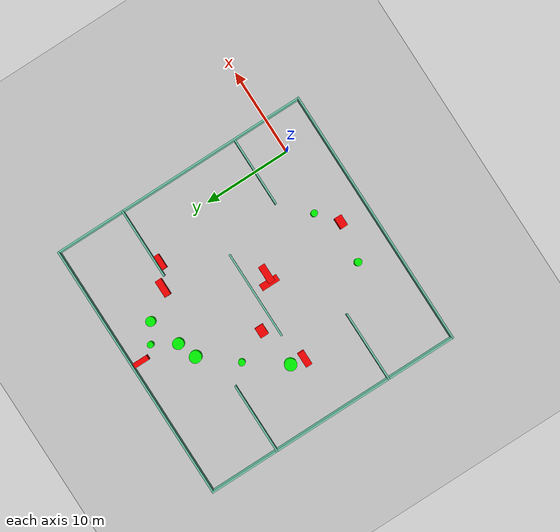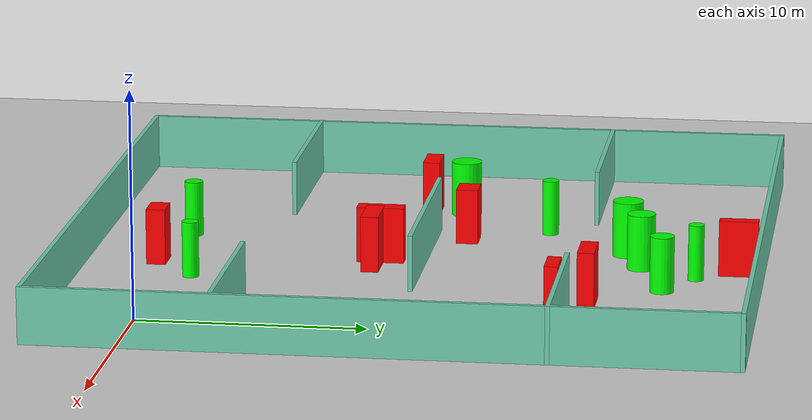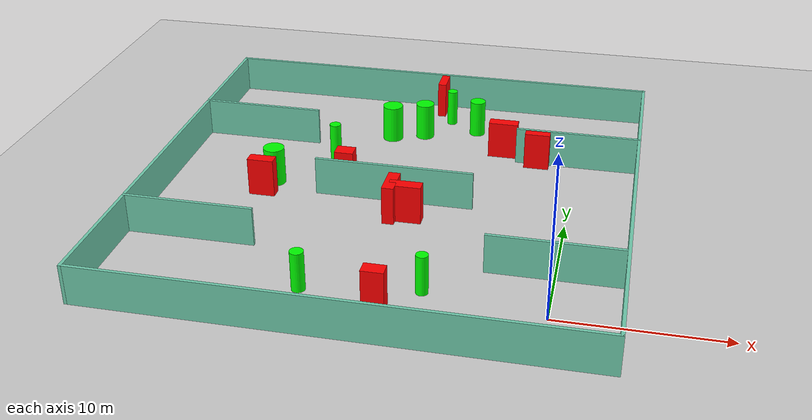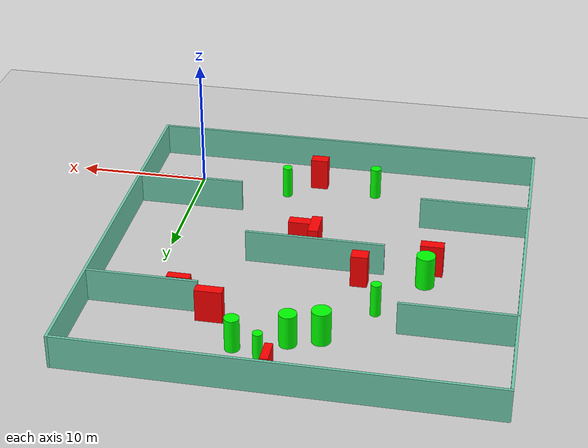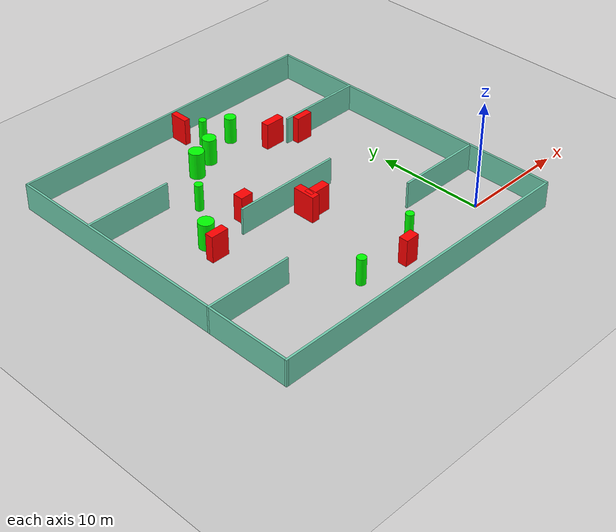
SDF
<sdf version="1.7">
 <world name="default">
  <light name="sun" type="directional">
   <pose>0 0 10 0 -0 0</pose>
   <diffuse>0.8 0.8 0.8 1</diffuse>
   <specular>0.2 0.2 0.2 1</specular>
   <attenuation>
    <range>1000</range>
    <constant>0.9</constant>
    <linear>0.01</linear>
    <quadratic>0.001</quadratic>
   </attenuation>
   <direction>-0.5 0.1 -0.9</direction>
   <spot><inner_angle>0</inner_angle><outer_angle>0</outer_angle><falloff>0</falloff></spot>
  </light>
  <model name="ground_plane">
   <static>1</static>
   <link name="link">
    <collision name="collision">
     <geometry><plane><normal>0 0 1</normal><size>100 100</size></plane></geometry>
     <surface>
      <contact><collide_bitmask>65535</collide_bitmask></contact>
      <friction><ode><mu>100</mu><mu2>50</mu2></ode></friction>
     </surface>
    </collision>
    <visual name="visual">
     <cast_shadows>0</cast_shadows>
     <geometry><plane><normal>0 0 1</normal><size>100 100</size></plane></geometry>
     <material>
      <script><uri>file://media/materials/scripts/gazebo.material</uri><name>Gazebo/Grey</name></script>
     </material>
    </visual>
   </link>
  </model>
  <gravity>0 0 -9.8</gravity>
  <magnetic_field>6e-06 2.3e-05 -4.2e-05</magnetic_field>
  <atmosphere type="adiabatic"/>
  <physics type="ode">
   <max_step_size>0.001</max_step_size>
   <real_time_factor>1</real_time_factor>
   <real_time_update_rate>1000</real_time_update_rate>
  </physics>
  <scene><ambient>0.4 0.4 0.4 1</ambient><background>0.7 0.7 0.7 1</background><shadows>1</shadows></scene>
  <spherical_coordinates>
   <surface_model>EARTH_WGS84</surface_model>
   <latitude_deg>0</latitude_deg>
   <longitude_deg>0</longitude_deg>
   <elevation>0</elevation>
   <heading_deg>0</heading_deg>
  </spherical_coordinates>
  <model name="my_base_walls">
   <link name="Wall_10">
    <collision name="Wall_10_Collision">
     <geometry><box><size>8.2 0.2 2.5</size></box></geometry>
     <pose>0 0 1.25 0 -0 0</pose>
    </collision>
    <visual name="Wall_10_Visual">
     <pose>0 0 1.25 0 -0 0</pose>
     <geometry><box><size>8.2 0.2 2.5</size></box></geometry>
     <material>
      <script><uri>file://media/materials/scripts/gazebo.material</uri><name>Gazebo/Grey</name></script>
      <ambient>0.435294 0.796078 0.67451 1</ambient>
     </material>
     <meta><layer>0</layer></meta>
    </visual>
    <pose>-11 -7 0 0 -0 0</pose>
   </link>
   <link name="Wall_12">
    <collision name="Wall_12_Collision">
     <geometry><box><size>8.2 0.2 2.5</size></box></geometry>
     <pose>0 0 1.25 0 -0 0</pose>
    </collision>
    <visual name="Wall_12_Visual">
     <pose>0 0 1.25 0 -0 0</pose>
     <geometry><box><size>8.2 0.2 2.5</size></box></geometry>
     <material>
      <script><uri>file://media/materials/scripts/gazebo.material</uri><name>Gazebo/Grey</name></script>
      <ambient>0.435294 0.796078 0.67451 1</ambient>
     </material>
     <meta><layer>0</layer></meta>
    </visual>
    <pose>-11 7 0 0 -0 0</pose>
   </link>
   <link name="Wall_14">
    <collision name="Wall_14_Collision">
     <geometry><box><size>8.2 0.2 2.5</size></box></geometry>
     <pose>0 0 1.25 0 -0 0</pose>
    </collision>
    <visual name="Wall_14_Visual">
     <pose>0 0 1.25 0 -0 0</pose>
     <geometry><box><size>8.2 0.2 2.5</size></box></geometry>
     <material>
      <script><uri>file://media/materials/scripts/gazebo.material</uri><name>Gazebo/Grey</name></script>
      <ambient>0.435294 0.796078 0.67451 1</ambient>
     </material>
     <meta><layer>0</layer></meta>
    </visual>
    <pose>11 7 0 0 -0 3.14159</pose>
   </link>
   <link name="Wall_16">
    <collision name="Wall_16_Collision">
     <geometry><box><size>10.2 0.2 2.5</size></box></geometry>
     <pose>0 0 1.25 0 -0 0</pose>
    </collision>
    <visual name="Wall_16_Visual">
     <pose>0 0 1.25 0 -0 0</pose>
     <geometry><box><size>10.2 0.2 2.5</size></box></geometry>
     <material>
      <script><uri>file://media/materials/scripts/gazebo.material</uri><name>Gazebo/Grey</name></script>
      <ambient>0.435294 0.796078 0.67451 1</ambient>
     </material>
     <meta><layer>0</layer></meta>
    </visual>
    <pose>0 0 0 0 -0 3.14159</pose>
   </link>
   <link name="Wall_2">
    <collision name="Wall_2_Collision">
     <geometry><box><size>30.2 0.2 2.5</size></box></geometry>
     <pose>0 0 1.25 0 -0 0</pose>
    </collision>
    <visual name="Wall_2_Visual">
     <pose>0 0 1.25 0 -0 0</pose>
     <geometry><box><size>30.2 0.2 2.5</size></box></geometry>
     <material>
      <script><uri>file://media/materials/scripts/gazebo.material</uri><name>Gazebo/Grey</name></script>
      <ambient>0.435294 0.796078 0.67451 1</ambient>
     </material>
     <meta><layer>0</layer></meta>
    </visual>
    <pose>0 -15 0 0 -0 3.14159</pose>
   </link>
   <link name="Wall_3">
    <collision name="Wall_3_Collision">
     <geometry><box><size>30.2 0.2 2.5</size></box></geometry>
     <pose>0 0 1.25 0 -0 0</pose>
    </collision>
    <visual name="Wall_3_Visual">
     <pose>0 0 1.25 0 -0 0</pose>
     <geometry><box><size>30.2 0.2 2.5</size></box></geometry>
     <material>
      <script><uri>file://media/materials/scripts/gazebo.material</uri><name>Gazebo/Grey</name></script>
      <ambient>0.435294 0.796078 0.67451 1</ambient>
     </material>
     <meta><layer>0</layer></meta>
    </visual>
    <pose>-15 0 0 0 -0 1.5708</pose>
   </link>
   <link name="Wall_4">
    <collision name="Wall_4_Collision">
     <geometry><box><size>30.2 0.2 2.5</size></box></geometry>
     <pose>0 0 1.25 0 -0 0</pose>
    </collision>
    <visual name="Wall_4_Visual">
     <pose>0 0 1.25 0 -0 0</pose>
     <geometry><box><size>30.2 0.2 2.5</size></box></geometry>
     <material>
      <script><uri>file://media/materials/scripts/gazebo.material</uri><name>Gazebo/Grey</name></script>
      <ambient>0.435294 0.796078 0.67451 1</ambient>
     </material>
     <meta><layer>0</layer></meta>
    </visual>
    <pose>0 15 0 0 -0 0</pose>
   </link>
   <link name="Wall_6">
    <collision name="Wall_6_Collision">
     <geometry><box><size>30.2 0.2 2.5</size></box></geometry>
     <pose>0 0 1.25 0 -0 0</pose>
    </collision>
    <visual name="Wall_6_Visual">
     <pose>0 0 1.25 0 -0 0</pose>
     <geometry><box><size>30.2 0.2 2.5</size></box></geometry>
     <material>
      <script><uri>file://media/materials/scripts/gazebo.material</uri><name>Gazebo/Grey</name></script>
      <ambient>0.435294 0.796078 0.67451 1</ambient>
     </material>
     <meta><layer>0</layer></meta>
    </visual>
    <pose>15 0 0 0 -0 1.5708</pose>
   </link>
   <link name="Wall_8">
    <collision name="Wall_8_Collision">
     <geometry><box><size>8.2 0.2 2.5</size></box></geometry>
     <pose>0 0 1.25 0 -0 0</pose>
    </collision>
    <visual name="Wall_8_Visual">
     <pose>0 0 1.25 0 -0 0</pose>
     <geometry><box><size>8.2 0.2 2.5</size></box></geometry>
     <material>
      <script><uri>file://media/materials/scripts/gazebo.material</uri><name>Gazebo/Grey</name></script>
      <ambient>0.435294 0.796078 0.67451 1</ambient>
     </material>
     <meta><layer>0</layer></meta>
    </visual>
    <pose>11 -7 0 0 -0 3.14159</pose>
   </link>
   <static>1</static>
   <pose>-11 11 0 0 -0 0</pose>
  </model>
  <model name="cylinder1">
   <static>1</static>
   <link name="link">
    <inertial>
     <mass>1</mass>
     <inertia><ixx>0.5</ixx><ixy>0</ixy><ixz>0</ixz><iyy>0.5</iyy><iyz>0</iyz><izz>1</izz></inertia>
    </inertial>
    <collision name="collision">
     <geometry><cylinder><radius>0.6859320776452676</radius><length>2.5</length></cylinder></geometry>
    </collision>
    <visual name="visual">
     <geometry><cylinder><radius>0.6859320776452676</radius><length>2.5</length></cylinder></geometry>
     <material>
      <ambient>0 1 0 1</ambient>
      <diffuse>0 1 0 1</diffuse>
      <specular>0.1 0.1 0.1 1</specular>
      <emissive>0 0 0 0</emissive>
     </material>
    </visual>
   </link>
   <pose>-13.0478949868129 19.84711253835974 1.25 0 0 0</pose>
  </model>
  <model name="cylinder2">
   <static>1</static>
   <link name="link">
    <inertial>
     <mass>1</mass>
     <inertia><ixx>0.5</ixx><ixy>0</ixy><ixz>0</ixz><iyy>0.5</iyy><iyz>0</iyz><izz>1</izz></inertia>
    </inertial>
    <collision name="collision">
     <geometry><cylinder><radius>0.3750515410241735</radius><length>2.5</length></cylinder></geometry>
    </collision>
    <visual name="visual">
     <geometry><cylinder><radius>0.3750515410241735</radius><length>2.5</length></cylinder></geometry>
     <material>
      <ambient>0 1 0 1</ambient>
      <diffuse>0 1 0 1</diffuse>
      <specular>0.1 0.1 0.1 1</specular>
      <emissive>0 0 0 0</emissive>
     </material>
    </visual>
   </link>
   <pose>-16.18516940205167 16.059884072254295 1.25 0 0 0</pose>
  </model>
  <model name="cylinder3">
   <static>1</static>
   <link name="link">
    <inertial>
     <mass>1</mass>
     <inertia><ixx>0.5</ixx><ixy>0</ixy><ixz>0</ixz><iyy>0.5</iyy><iyz>0</iyz><izz>1</izz></inertia>
    </inertial>
    <collision name="collision">
     <geometry><cylinder><radius>0.41018587113417104</radius><length>2.5</length></cylinder></geometry>
    </collision>
    <visual name="visual">
     <geometry><cylinder><radius>0.41018587113417104</radius><length>2.5</length></cylinder></geometry>
     <material>
      <ambient>0 1 0 1</ambient>
      <diffuse>0 1 0 1</diffuse>
      <specular>0.1 0.1 0.1 1</specular>
      <emissive>0 0 0 0</emissive>
     </material>
    </visual>
   </link>
   <pose>-13.949164373201674 0.03603692957183169 1.25 0 0 0</pose>
  </model>
  <model name="cylinder4">
   <static>1</static>
   <link name="link">
    <inertial>
     <mass>1</mass>
     <inertia><ixx>0.5</ixx><ixy>0</ixy><ixz>0</ixz><iyy>0.5</iyy><iyz>0</iyz><izz>1</izz></inertia>
    </inertial>
    <collision name="collision">
     <geometry><cylinder><radius>0.5278918431998718</radius><length>2.5</length></cylinder></geometry>
    </collision>
    <visual name="visual">
     <geometry><cylinder><radius>0.5278918431998718</radius><length>2.5</length></cylinder></geometry>
     <material>
      <ambient>0 1 0 1</ambient>
      <diffuse>0 1 0 1</diffuse>
      <specular>0.1 0.1 0.1 1</specular>
      <emissive>0 0 0 0</emissive>
     </material>
    </visual>
   </link>
   <pose>-7.348985034873252 21.80629889330616 1.25 0 0 0</pose>
  </model>
  <model name="cylinder5">
   <static>1</static>
   <link name="link">
    <inertial>
     <mass>1</mass>
     <inertia><ixx>0.5</ixx><ixy>0</ixy><ixz>0</ixz><iyy>0.5</iyy><iyz>0</iyz><izz>1</izz></inertia>
    </inertial>
    <collision name="collision">
     <geometry><cylinder><radius>0.3657701263011913</radius><length>2.5</length></cylinder></geometry>
    </collision>
    <visual name="visual">
     <geometry><cylinder><radius>0.3657701263011913</radius><length>2.5</length></cylinder></geometry>
     <material>
      <ambient>0 1 0 1</ambient>
      <diffuse>0 1 0 1</diffuse>
      <specular>0.1 0.1 0.1 1</specular>
      <emissive>0 0 0 0</emissive>
     </material>
    </visual>
   </link>
   <pose>-7.112106972156095 1.1365491878837783 1.25 0 0 0</pose>
  </model>
  <model name="cylinder6">
   <static>1</static>
   <link name="link">
    <inertial>
     <mass>1</mass>
     <inertia><ixx>0.5</ixx><ixy>0</ixy><ixz>0</ixz><iyy>0.5</iyy><iyz>0</iyz><izz>1</izz></inertia>
    </inertial>
    <collision name="collision">
     <geometry><cylinder><radius>0.3468359075407159</radius><length>2.5</length></cylinder></geometry>
    </collision>
    <visual name="visual">
     <geometry><cylinder><radius>0.3468359075407159</radius><length>2.5</length></cylinder></geometry>
     <material>
      <ambient>0 1 0 1</ambient>
      <diffuse>0 1 0 1</diffuse>
      <specular>0.1 0.1 0.1 1</specular>
      <emissive>0 0 0 0</emissive>
     </material>
    </visual>
   </link>
   <pose>-9.394787969967108 23.140973569847212 1.25 0 0 0</pose>
  </model>
  <model name="cylinder7">
   <static>1</static>
   <link name="link">
    <inertial>
     <mass>1</mass>
     <inertia><ixx>0.5</ixx><ixy>0</ixy><ixz>0</ixz><iyy>0.5</iyy><iyz>0</iyz><izz>1</izz></inertia>
    </inertial>
    <collision name="collision">
     <geometry><cylinder><radius>0.6854744678077762</radius><length>2.5</length></cylinder></geometry>
    </collision>
    <visual name="visual">
     <geometry><cylinder><radius>0.6854744678077762</radius><length>2.5</length></cylinder></geometry>
     <material>
      <ambient>0 1 0 1</ambient>
      <diffuse>0 1 0 1</diffuse>
      <specular>0.1 0.1 0.1 1</specular>
      <emissive>0 0 0 0</emissive>
     </material>
    </visual>
   </link>
   <pose>-19.16502583894163 11.862786474853591 1.25 0 0 0</pose>
  </model>
  <model name="cylinder8">
   <static>1</static>
   <link name="link">
    <inertial>
     <mass>1</mass>
     <inertia><ixx>0.5</ixx><ixy>0</ixy><ixz>0</ixz><iyy>0.5</iyy><iyz>0</iyz><izz>1</izz></inertia>
    </inertial>
    <collision name="collision">
     <geometry><cylinder><radius>0.6256244126663476</radius><length>2.5</length></cylinder></geometry>
    </collision>
    <visual name="visual">
     <geometry><cylinder><radius>0.6256244126663476</radius><length>2.5</length></cylinder></geometry>
     <material>
      <ambient>0 1 0 1</ambient>
      <diffuse>0 1 0 1</diffuse>
      <specular>0.1 0.1 0.1 1</specular>
      <emissive>0 0 0 0</emissive>
     </material>
    </visual>
   </link>
   <pose>-10.905683025692976 20.615302626535257 1.25 0 0 0</pose>
  </model>
  <model name="box1">
   <static>1</static>
   <link name="link">
    <inertial>
     <mass>1</mass>
     <inertia><ixx>0.083</ixx><ixy>0</ixy><ixz>0</ixz><iyy>0.083</iyy><iyz>0</iyz><izz>0.083</izz></inertia>
    </inertial>
    <collision name="collision">
     <geometry><box><size>1.691073968106779 0.7657570562748413 2.5</size></box></geometry>
    </collision>
    <visual name="visual">
     <geometry><box><size>1.691073968106779 0.7657570562748413 2.5</size></box></geometry>
     <material>
      <ambient>1 0 0 1</ambient>
      <diffuse>1 0 0 1</diffuse>
      <specular>0.1 0.1 0.1 1</specular>
      <emissive>0 0 0 0</emissive>
     </material>
    </visual>
    <sensor name="my_contact" type="contact">
     <contact><collision>box_collision</collision><topic>__default_topic__</topic></contact>
    </sensor>
   </link>
   <pose>-19.455496080420254 10.274582592127398 1.25 0 0 0</pose>
  </model>
  <model name="box2">
   <static>1</static>
   <link name="link">
    <inertial>
     <mass>1</mass>
     <inertia><ixx>0.083</ixx><ixy>0</ixy><ixz>0</ixz><iyy>0.083</iyy><iyz>0</iyz><izz>0.083</izz></inertia>
    </inertial>
    <collision name="collision">
     <geometry><box><size>2.078616026927751 0.781667497749865 2.5</size></box></geometry>
    </collision>
    <visual name="visual">
     <geometry><box><size>2.078616026927751 0.781667497749865 2.5</size></box></geometry>
     <material>
      <ambient>1 0 0 1</ambient>
      <diffuse>1 0 0 1</diffuse>
      <specular>0.1 0.1 0.1 1</specular>
      <emissive>0 0 0 0</emissive>
     </material>
    </visual>
    <sensor name="my_contact" type="contact">
     <contact><collision>box_collision</collision><topic>__default_topic__</topic></contact>
    </sensor>
   </link>
   <pose>-9.754091128803609 8.817216451747765 1.25 0 0 0</pose>
  </model>
  <model name="box3">
   <static>1</static>
   <link name="link">
    <inertial>
     <mass>1</mass>
     <inertia><ixx>0.083</ixx><ixy>0</ixy><ixz>0</ixz><iyy>0.083</iyy><iyz>0</iyz><izz>0.083</izz></inertia>
    </inertial>
    <collision name="collision">
     <geometry><box><size>1.218640176887245 0.9720808348131741 2.5</size></box></geometry>
    </collision>
    <visual name="visual">
     <geometry><box><size>1.218640176887245 0.9720808348131741 2.5</size></box></geometry>
     <material>
      <ambient>1 0 0 1</ambient>
      <diffuse>1 0 0 1</diffuse>
      <specular>0.1 0.1 0.1 1</specular>
      <emissive>0 0 0 0</emissive>
     </material>
    </visual>
    <sensor name="my_contact" type="contact">
     <contact><collision>box_collision</collision><topic>__default_topic__</topic></contact>
    </sensor>
   </link>
   <pose>-14.537978008349507 12.505498585831598 1.25 0 0 0</pose>
  </model>
  <model name="box4">
   <static>1</static>
   <link name="link">
    <inertial>
     <mass>1</mass>
     <inertia><ixx>0.083</ixx><ixy>0</ixy><ixz>0</ixz><iyy>0.083</iyy><iyz>0</iyz><izz>0.083</izz></inertia>
    </inertial>
    <collision name="collision">
     <geometry><box><size>1.3186788123459074 0.8486879317165337 2.5</size></box></geometry>
    </collision>
    <visual name="visual">
     <geometry><box><size>1.3186788123459074 0.8486879317165337 2.5</size></box></geometry>
     <material>
      <ambient>1 0 0 1</ambient>
      <diffuse>1 0 0 1</diffuse>
      <specular>0.1 0.1 0.1 1</specular>
      <emissive>0 0 0 0</emissive>
     </material>
    </visual>
    <sensor name="my_contact" type="contact">
     <contact><collision>box_collision</collision><topic>__default_topic__</topic></contact>
    </sensor>
   </link>
   <pose>-9.39411764968362 -0.7373483091509372 1.25 0 0 0</pose>
  </model>
  <model name="box5">
   <static>1</static>
   <link name="link">
    <inertial>
     <mass>1</mass>
     <inertia><ixx>0.083</ixx><ixy>0</ixy><ixz>0</ixz><iyy>0.083</iyy><iyz>0</iyz><izz>0.083</izz></inertia>
    </inertial>
    <collision name="collision">
     <geometry><box><size>1.6514197423740644 0.5987902769540971 2.5</size></box></geometry>
    </collision>
    <visual name="visual">
     <geometry><box><size>1.6514197423740644 0.5987902769540971 2.5</size></box></geometry>
     <material>
      <ambient>1 0 0 1</ambient>
      <diffuse>1 0 0 1</diffuse>
      <specular>0.1 0.1 0.1 1</specular>
      <emissive>0 0 0 0</emissive>
     </material>
    </visual>
    <sensor name="my_contact" type="contact">
     <contact><collision>box_collision</collision><topic>__default_topic__</topic></contact>
    </sensor>
   </link>
   <pose>-2.6305164690022664 17.53521933587524 1.25 0 0 0</pose>
  </model>
  <model name="box6">
   <static>1</static>
   <link name="link">
    <inertial>
     <mass>1</mass>
     <inertia><ixx>0.083</ixx><ixy>0</ixy><ixz>0</ixz><iyy>0.083</iyy><iyz>0</iyz><izz>0.083</izz></inertia>
    </inertial>
    <collision name="collision">
     <geometry><box><size>1.9442729893416473 0.7395851666671448 2.5</size></box></geometry>
    </collision>
    <visual name="visual">
     <geometry><box><size>1.9442729893416473 0.7395851666671448 2.5</size></box></geometry>
     <material>
      <ambient>1 0 0 1</ambient>
      <diffuse>1 0 0 1</diffuse>
      <specular>0.1 0.1 0.1 1</specular>
      <emissive>0 0 0 0</emissive>
     </material>
    </visual>
    <sensor name="my_contact" type="contact">
     <contact><collision>box_collision</collision><topic>__default_topic__</topic></contact>
    </sensor>
   </link>
   <pose>-5.080475096150401 18.787050387537974 1.25 0 0 0</pose>
  </model>
  <model name="box7">
   <static>1</static>
   <link name="link">
    <inertial>
     <mass>1</mass>
     <inertia><ixx>0.083</ixx><ixy>0</ixy><ixz>0</ixz><iyy>0.083</iyy><iyz>0</iyz><izz>0.083</izz></inertia>
    </inertial>
    <collision name="collision">
     <geometry><box><size>0.5638027017667279 1.7265547847923814 2.5</size></box></geometry>
    </collision>
    <visual name="visual">
     <geometry><box><size>0.5638027017667279 1.7265547847923814 2.5</size></box></geometry>
     <material>
      <ambient>1 0 0 1</ambient>
      <diffuse>1 0 0 1</diffuse>
      <specular>0.1 0.1 0.1 1</specular>
      <emissive>0 0 0 0</emissive>
     </material>
    </visual>
    <sensor name="my_contact" type="contact">
     <contact><collision>box_collision</collision><topic>__default_topic__</topic></contact>
    </sensor>
   </link>
   <pose>-10.357567642806472 24.941388371414504 1.25 0 0 0</pose>
  </model>
  <model name="box8">
   <static>1</static>
   <link name="link">
    <inertial>
     <mass>1</mass>
     <inertia><ixx>0.083</ixx><ixy>0</ixy><ixz>0</ixz><iyy>0.083</iyy><iyz>0</iyz><izz>0.083</izz></inertia>
    </inertial>
    <collision name="collision">
     <geometry><box><size>0.7554560505193542 2.097988112404953 2.5</size></box></geometry>
    </collision>
    <visual name="visual">
     <geometry><box><size>0.7554560505193542 2.097988112404953 2.5</size></box></geometry>
     <material>
      <ambient>1 0 0 1</ambient>
      <diffuse>1 0 0 1</diffuse>
      <specular>0.1 0.1 0.1 1</specular>
      <emissive>0 0 0 0</emissive>
     </material>
    </visual>
    <sensor name="my_contact" type="contact">
     <contact><collision>box_collision</collision><topic>__default_topic__</topic></contact>
    </sensor>
   </link>
   <pose>-10.698699044241629 9.067508301466532 1.25 0 0 0</pose>
  </model>
 </world>
</sdf>
